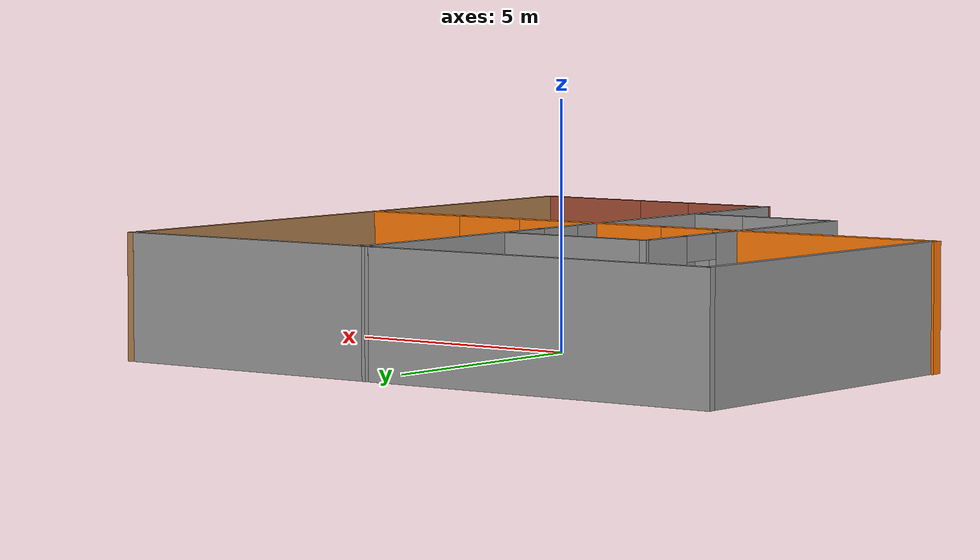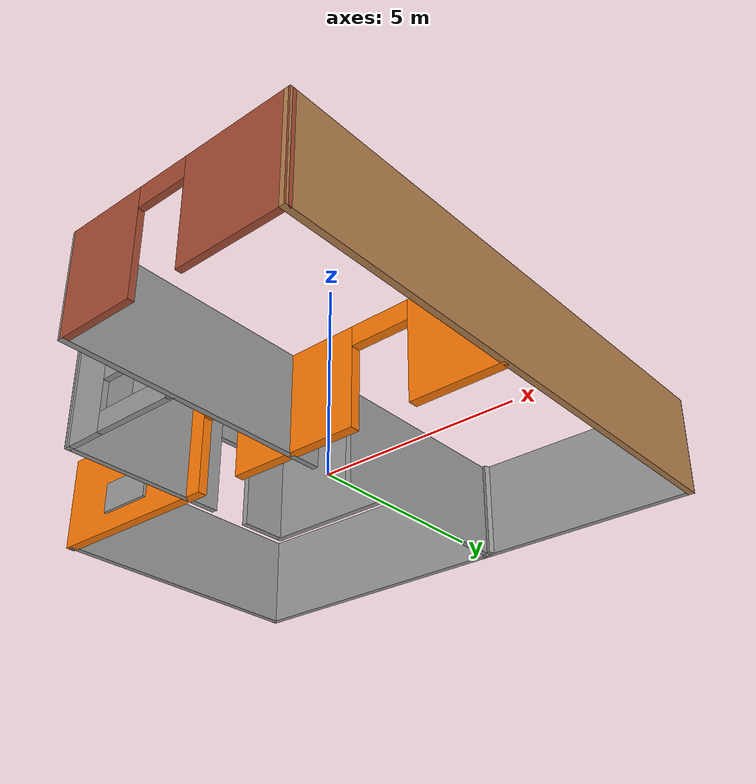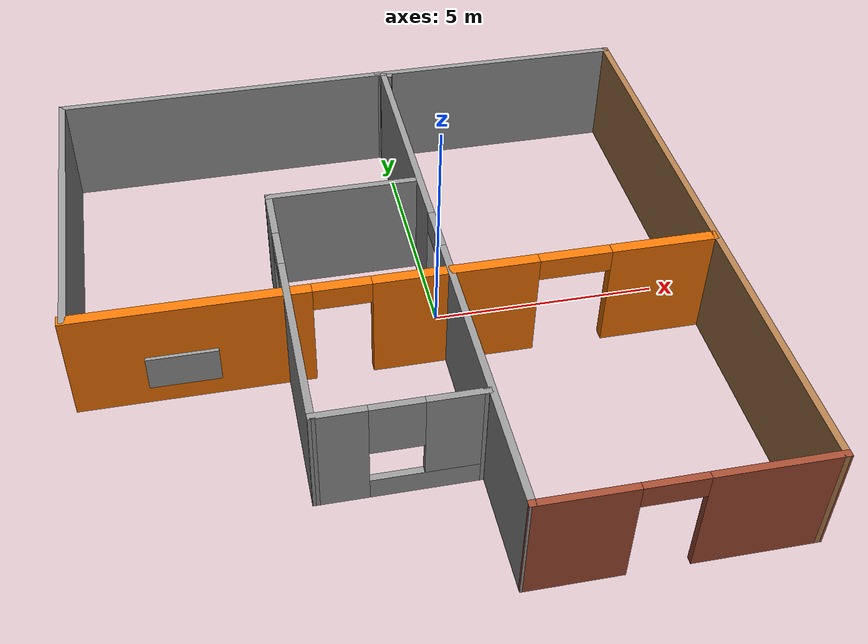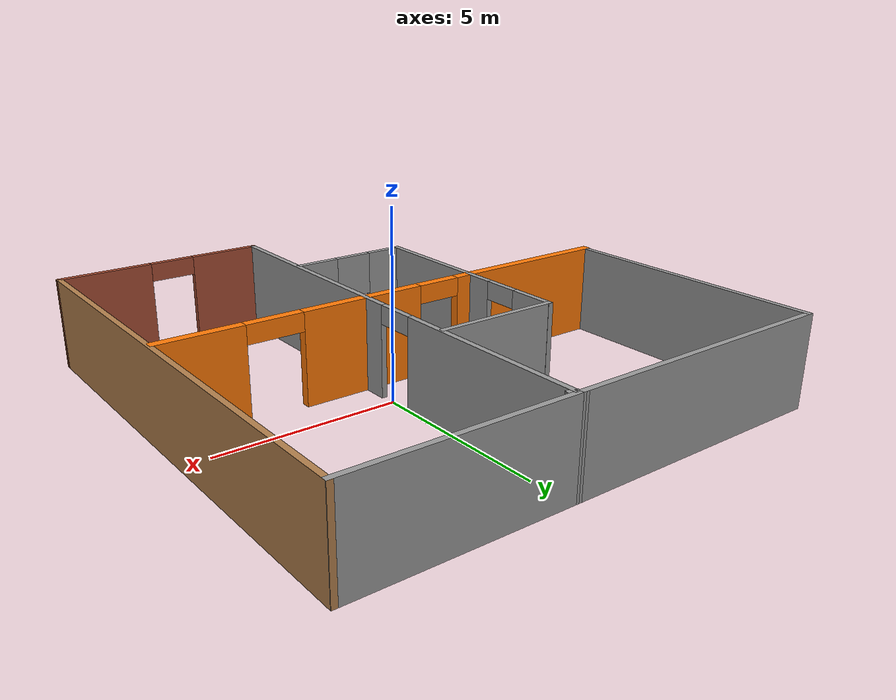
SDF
<?xml version='1.0'?>
<sdf version='1.6'>
  <model name='UfficioBase'>
    <pose frame=''>-1.05793 -0.50638 0 0 -0 0</pose>
    <link name='Wall_0'>
      <collision name='Wall_0_Collision'>
        <geometry>
          <box>
            <size>7.77861 0.15 2.5</size>
          </box>
        </geometry>
        <pose frame=''>0 0 1.25 0 -0 0</pose>
      </collision>
      <visual name='Wall_0_Visual'>
        <pose frame=''>0 0 1.25 0 -0 0</pose>
        <geometry>
          <box>
            <size>7.77861 0.15 2.5</size>
          </box>
        </geometry>
        <material>
          <script>
            <uri>file://media/materials/scripts/gazebo.material</uri>
            <name>Gazebo/Grey</name>
          </script>
          <ambient>1 1 1 1</ambient>
        </material>
      </visual>
      <pose frame=''>-2.90624 6.69915 0 0 -0 0.002248</pose>
    </link>
    <link name='Wall_1'>
      <collision name='Wall_1_Collision'>
        <geometry>
          <box>
            <size>6.00559 0.15 2.5</size>
          </box>
        </geometry>
        <pose frame=''>0 0 1.25 0 -0 0</pose>
      </collision>
      <visual name='Wall_1_Visual'>
        <pose frame=''>0 0 1.25 0 -0 0</pose>
        <geometry>
          <box>
            <size>6.00559 0.15 2.5</size>
          </box>
        </geometry>
        <material>
          <script>
            <uri>file://media/materials/scripts/gazebo.material</uri>
            <name>Gazebo/Grey</name>
          </script>
          <ambient>1 1 1 1</ambient>
        </material>
      </visual>
      <pose frame=''>3.83014 6.70755 0 0 0 -5.9e-05</pose>
    </link>
    <link name='Wall_11'>
      <collision name='Wall_11_Collision'>
        <geometry>
          <box>
            <size>3.4532 0.15 2.5</size>
          </box>
        </geometry>
        <pose frame=''>0 0 1.25 0 -0 0</pose>
      </collision>
      <visual name='Wall_11_Visual'>
        <pose frame=''>0 0 1.25 0 -0 0</pose>
        <geometry>
          <box>
            <size>3.4532 0.15 2.5</size>
          </box>
        </geometry>
        <material>
          <script>
            <uri>file://media/materials/scripts/gazebo.material</uri>
            <name>Gazebo/Grey</name>
          </script>
          <ambient>1 1 1 1</ambient>
        </material>
      </visual>
      <pose frame=''>-0.659815 2.39779 0 0 -0 3.14028</pose>
    </link>
    <link name='Wall_12'>
      <pose frame=''>-2.32127 -0.818911 0 0 0 -1.57386</pose>
      <visual name='Wall_12_Visual_0'>
        <pose frame=''>-2.6363 0 1.25 0 -0 0</pose>
        <geometry>
          <box>
            <size>1.32378 0.15 2.5</size>
          </box>
        </geometry>
        <material>
          <script>
            <uri>file://media/materials/scripts/gazebo.material</uri>
            <name>Gazebo/Grey</name>
          </script>
          <ambient>1 1 1 1</ambient>
        </material>
      </visual>
      <collision name='Wall_12_Collision_0'>
        <geometry>
          <box>
            <size>1.32378 0.15 2.5</size>
          </box>
        </geometry>
        <pose frame=''>-2.6363 0 1.25 0 -0 0</pose>
      </collision>
      <visual name='Wall_12_Visual_1'>
        <pose frame=''>1.1508 0 1.25 0 -0 0</pose>
        <geometry>
          <box>
            <size>4.29479 0.15 2.5</size>
          </box>
        </geometry>
        <material>
          <script>
            <uri>file://media/materials/scripts/gazebo.material</uri>
            <name>Gazebo/Grey</name>
          </script>
          <ambient>1 1 1 1</ambient>
        </material>
      </visual>
      <collision name='Wall_12_Collision_1'>
        <geometry>
          <box>
            <size>4.29479 0.15 2.5</size>
          </box>
        </geometry>
        <pose frame=''>1.1508 0 1.25 0 -0 0</pose>
      </collision>
      <visual name='Wall_12_Visual_2'>
        <pose frame=''>-1.4855 0 2.25 0 -0 0</pose>
        <geometry>
          <box>
            <size>0.977819 0.15 0.5</size>
          </box>
        </geometry>
        <material>
          <script>
            <uri>file://media/materials/scripts/gazebo.material</uri>
            <name>Gazebo/Grey</name>
          </script>
          <ambient>1 1 1 1</ambient>
        </material>
      </visual>
      <collision name='Wall_12_Collision_2'>
        <geometry>
          <box>
            <size>0.977819 0.15 0.5</size>
          </box>
        </geometry>
        <pose frame=''>-1.4855 0 2.25 0 -0 0</pose>
      </collision>
    </link>
    <link name='Wall_13'>
      <pose frame=''>-0.672965 -4.04426 0 0 0 -0.001309</pose>
      <visual name='Wall_13_Visual_0'>
        <pose frame=''>-1.16681 0 1.25 0 -0 0</pose>
        <geometry>
          <box>
            <size>1.11958 0.15 2.5</size>
          </box>
        </geometry>
        <material>
          <script>
            <uri>file://media/materials/scripts/gazebo.material</uri>
            <name>Gazebo/Grey</name>
          </script>
          <ambient>1 1 1 1</ambient>
        </material>
      </visual>
      <collision name='Wall_13_Collision_0'>
        <geometry>
          <box>
            <size>1.11958 0.15 2.5</size>
          </box>
        </geometry>
        <pose frame=''>-1.16681 0 1.25 0 -0 0</pose>
      </collision>
      <visual name='Wall_13_Visual_1'>
        <pose frame=''>0.559788 0 0.25 0 -0 0</pose>
        <geometry>
          <box>
            <size>2.33362 0.15 0.5</size>
          </box>
        </geometry>
        <material>
          <script>
            <uri>file://media/materials/scripts/gazebo.material</uri>
            <name>Gazebo/Grey</name>
          </script>
          <ambient>1 1 1 1</ambient>
        </material>
      </visual>
      <collision name='Wall_13_Collision_1'>
        <geometry>
          <box>
            <size>2.33362 0.15 0.5</size>
          </box>
        </geometry>
        <pose frame=''>0.559788 0 0.25 0 -0 0</pose>
      </collision>
      <visual name='Wall_13_Visual_2'>
        <pose frame=''>1.09843 0 1.5 0 -0 0</pose>
        <geometry>
          <box>
            <size>1.25634 0.15 2</size>
          </box>
        </geometry>
        <material>
          <script>
            <uri>file://media/materials/scripts/gazebo.material</uri>
            <name>Gazebo/Grey</name>
          </script>
          <ambient>1 1 1 1</ambient>
        </material>
      </visual>
      <collision name='Wall_13_Collision_2'>
        <geometry>
          <box>
            <size>1.25634 0.15 2</size>
          </box>
        </geometry>
        <pose frame=''>1.09843 0 1.5 0 -0 0</pose>
      </collision>
      <visual name='Wall_13_Visual_3'>
        <pose frame=''>-0.068381 0 1.9 0 -0 0</pose>
        <geometry>
          <box>
            <size>1.07728 0.15 1.2</size>
          </box>
        </geometry>
        <material>
          <script>
            <uri>file://media/materials/scripts/gazebo.material</uri>
            <name>Gazebo/Grey</name>
          </script>
          <ambient>1 1 1 1</ambient>
        </material>
      </visual>
      <collision name='Wall_13_Collision_3'>
        <geometry>
          <box>
            <size>1.07728 0.15 1.2</size>
          </box>
        </geometry>
        <pose frame=''>-0.068381 0 1.9 0 -0 0</pose>
      </collision>
    </link>
    <link name='Wall_14'>
      <collision name='Wall_14_Collision'>
        <geometry>
          <box>
            <size>0.15 0.15 2.5</size>
          </box>
        </geometry>
        <pose frame=''>0 0 1.25 0 -0 0</pose>
      </collision>
      <visual name='Wall_14_Visual'>
        <pose frame=''>0 0 1.25 0 -0 0</pose>
        <geometry>
          <box>
            <size>0.15 0.15 2.5</size>
          </box>
        </geometry>
        <material>
          <script>
            <uri>file://media/materials/scripts/gazebo.material</uri>
            <name>Gazebo/Grey</name>
          </script>
          <ambient>1 1 1 1</ambient>
        </material>
      </visual>
      <pose frame=''>0.972057 -4.04642 0 0 -0 0</pose>
    </link>
    <link name='Wall_2'>
      <collision name='Wall_2_Collision'>
        <geometry>
          <box>
            <size>13.5653 0.15 2.5</size>
          </box>
        </geometry>
        <pose frame=''>0 0 1.25 0 -0 0</pose>
      </collision>
      <visual name='Wall_2_Visual'>
        <pose frame=''>0 0 1.25 0 -0 0</pose>
        <geometry>
          <box>
            <size>13.5653 0.15 2.5</size>
          </box>
        </geometry>
        <material>
          <script>
            <uri>file://media/materials/scripts/gazebo.material</uri>
            <name>Gazebo/Wood</name>
          </script>
          <ambient>0.996078 0.47451 0.0196078 1</ambient>
        </material>
      </visual>
      <pose frame=''>6.76143 -0.00012 0 0 0 -1.57028</pose>
    </link>
    <link name='Wall_3'>
      <pose frame=''>3.91193 -6.69712 0 0 -0 3.13791</pose>
      <visual name='Wall_3_Visual_0'>
        <pose frame=''>-1.63283 0 1.25 0 -0 0</pose>
        <geometry>
          <box>
            <size>2.59043 0.15 2.5</size>
          </box>
        </geometry>
        <material>
          <script>
            <uri>file://media/materials/scripts/gazebo.material</uri>
            <name>Gazebo/Bricks</name>
          </script>
          <ambient>0.996078 0.47451 0.0196078 1</ambient>
        </material>
      </visual>
      <collision name='Wall_3_Collision_0'>
        <geometry>
          <box>
            <size>2.59043 0.15 2.5</size>
          </box>
        </geometry>
        <pose frame=''>-1.63283 0 1.25 0 -0 0</pose>
      </collision>
      <visual name='Wall_3_Visual_1'>
        <pose frame=''>1.91963 0 1.25 0 -0 0</pose>
        <geometry>
          <box>
            <size>2.01683 0.15 2.5</size>
          </box>
        </geometry>
        <material>
          <script>
            <uri>file://media/materials/scripts/gazebo.material</uri>
            <name>Gazebo/Bricks</name>
          </script>
          <ambient>0.996078 0.47451 0.0196078 1</ambient>
        </material>
      </visual>
      <collision name='Wall_3_Collision_1'>
        <geometry>
          <box>
            <size>2.01683 0.15 2.5</size>
          </box>
        </geometry>
        <pose frame=''>1.91963 0 1.25 0 -0 0</pose>
      </collision>
      <visual name='Wall_3_Visual_2'>
        <pose frame=''>0.286797 0 2.25 0 -0 0</pose>
        <geometry>
          <box>
            <size>1.24883 0.15 0.5</size>
          </box>
        </geometry>
        <material>
          <script>
            <uri>file://media/materials/scripts/gazebo.material</uri>
            <name>Gazebo/Bricks</name>
          </script>
          <ambient>0.996078 0.47451 0.0196078 1</ambient>
        </material>
      </visual>
      <collision name='Wall_3_Collision_2'>
        <geometry>
          <box>
            <size>1.24883 0.15 0.5</size>
          </box>
        </geometry>
        <pose frame=''>0.286797 0 2.25 0 -0 0</pose>
      </collision>
    </link>
    <link name='Wall_4'>
      <pose frame=''>1.04883 -0.028808 0 0 -0 1.57231</pose>
      <visual name='Wall_4_Visual_0'>
        <pose frame=''>-3.30138 0 1.25 0 -0 0</pose>
        <geometry>
          <box>
            <size>6.86261 0.15 2.5</size>
          </box>
        </geometry>
        <material>
          <script>
            <uri>file://media/materials/scripts/gazebo.material</uri>
            <name>Gazebo/Grey</name>
          </script>
          <ambient>1 1 1 1</ambient>
        </material>
      </visual>
      <collision name='Wall_4_Collision_0'>
        <geometry>
          <box>
            <size>6.86261 0.15 2.5</size>
          </box>
        </geometry>
        <pose frame=''>-3.30138 0 1.25 0 -0 0</pose>
      </collision>
      <visual name='Wall_4_Visual_1'>
        <pose frame=''>3.97425 0 1.25 0 -0 0</pose>
        <geometry>
          <box>
            <size>5.51685 0.15 2.5</size>
          </box>
        </geometry>
        <material>
          <script>
            <uri>file://media/materials/scripts/gazebo.material</uri>
            <name>Gazebo/Grey</name>
          </script>
          <ambient>1 1 1 1</ambient>
        </material>
      </visual>
      <collision name='Wall_4_Collision_1'>
        <geometry>
          <box>
            <size>5.51685 0.15 2.5</size>
          </box>
        </geometry>
        <pose frame=''>3.97425 0 1.25 0 -0 0</pose>
      </collision>
      <visual name='Wall_4_Visual_2'>
        <pose frame=''>0.672878 0 2.25 0 -0 0</pose>
        <geometry>
          <box>
            <size>1.0859 0.15 0.5</size>
          </box>
        </geometry>
        <material>
          <script>
            <uri>file://media/materials/scripts/gazebo.material</uri>
            <name>Gazebo/Grey</name>
          </script>
          <ambient>1 1 1 1</ambient>
        </material>
      </visual>
      <collision name='Wall_4_Collision_2'>
        <geometry>
          <box>
            <size>1.0859 0.15 0.5</size>
          </box>
        </geometry>
        <pose frame=''>0.672878 0 2.25 0 -0 0</pose>
      </collision>
    </link>
    <link name='Wall_5'>
      <collision name='Wall_5_Collision'>
        <geometry>
          <box>
            <size>0.15 0.15 2.5</size>
          </box>
        </geometry>
        <pose frame=''>0 0 1.25 0 -0 0</pose>
      </collision>
      <visual name='Wall_5_Visual'>
        <pose frame=''>0 0 1.25 0 -0 0</pose>
        <geometry>
          <box>
            <size>0.15 0.15 2.5</size>
          </box>
        </geometry>
        <material>
          <script>
            <uri>file://media/materials/scripts/gazebo.material</uri>
            <name>Gazebo/Grey</name>
          </script>
          <ambient>1 1 1 1</ambient>
        </material>
      </visual>
      <pose frame=''>1.03873 6.63398 0 0 -0 0</pose>
    </link>
    <link name='Wall_6'>
      <collision name='Wall_6_Collision'>
        <geometry>
          <box>
            <size>0.286845 0.15 2.5</size>
          </box>
        </geometry>
        <pose frame=''>0 0 1.25 0 -0 0</pose>
      </collision>
      <visual name='Wall_6_Visual'>
        <pose frame=''>0 0 1.25 0 -0 0</pose>
        <geometry>
          <box>
            <size>0.286845 0.15 2.5</size>
          </box>
        </geometry>
        <material>
          <script>
            <uri>file://media/materials/scripts/gazebo.material</uri>
            <name>Gazebo/Grey</name>
          </script>
          <ambient>1 1 1 1</ambient>
        </material>
      </visual>
      <pose frame=''>1.1034 6.6116 0 0 0 -0.333109</pose>
    </link>
    <link name='Wall_8'>
      <collision name='Wall_8_Collision'>
        <geometry>
          <box>
            <size>7.5 0.15 2.5</size>
          </box>
        </geometry>
        <pose frame=''>0 0 1.25 0 -0 0</pose>
      </collision>
      <visual name='Wall_8_Visual'>
        <pose frame=''>0 0 1.25 0 -0 0</pose>
        <geometry>
          <box>
            <size>7.5 0.15 2.5</size>
          </box>
        </geometry>
        <material>
          <script>
            <uri>file://media/materials/scripts/gazebo.material</uri>
            <name>Gazebo/Grey</name>
          </script>
          <ambient>1 1 1 1</ambient>
        </material>
      </visual>
      <pose frame=''>-6.71494 3.00962 0 0 0 -1.57083</pose>
    </link>
    <link name='Wall_9'>
      <pose frame=''>-0.034568 -0.67462 0 0 0 -0.001347</pose>
      <visual name='Wall_9_Visual_0'>
        <pose frame=''>-4.29269 0 1.25 0 -0 0</pose>
        <geometry>
          <box>
            <size>5.02563 0.25 2.5</size>
          </box>
        </geometry>
        <material>
          <script>
            <uri>file://media/materials/scripts/gazebo.material</uri>
            <name>Gazebo/Grey</name>
          </script>
          <ambient>0.996078 0.47451 0.0196078 1</ambient>
        </material>
      </visual>
      <collision name='Wall_9_Collision_0'>
        <geometry>
          <box>
            <size>5.02563 0.25 2.5</size>
          </box>
        </geometry>
        <pose frame=''>-4.29269 0 1.25 0 -0 0</pose>
      </collision>
      <visual name='Wall_9_Visual_1'>
        <pose frame=''>1.1939 0 1.25 0 -0 0</pose>
        <geometry>
          <box>
            <size>3.49803 0.25 2.5</size>
          </box>
        </geometry>
        <material>
          <script>
            <uri>file://media/materials/scripts/gazebo.material</uri>
            <name>Gazebo/Grey</name>
          </script>
          <ambient>0.996078 0.47451 0.0196078 1</ambient>
        </material>
      </visual>
      <collision name='Wall_9_Collision_1'>
        <geometry>
          <box>
            <size>3.49803 0.25 2.5</size>
          </box>
        </geometry>
        <pose frame=''>1.1939 0 1.25 0 -0 0</pose>
      </collision>
      <visual name='Wall_9_Visual_2'>
        <pose frame=''>5.64621 0 1.25 0 -0 0</pose>
        <geometry>
          <box>
            <size>2.31859 0.25 2.5</size>
          </box>
        </geometry>
        <material>
          <script>
            <uri>file://media/materials/scripts/gazebo.material</uri>
            <name>Gazebo/Grey</name>
          </script>
          <ambient>0.996078 0.47451 0.0196078 1</ambient>
        </material>
      </visual>
      <collision name='Wall_9_Collision_2'>
        <geometry>
          <box>
            <size>2.31859 0.25 2.5</size>
          </box>
        </geometry>
        <pose frame=''>5.64621 0 1.25 0 -0 0</pose>
      </collision>
      <visual name='Wall_9_Visual_3'>
        <pose frame=''>-1.16749 0 2.25 0 -0 0</pose>
        <geometry>
          <box>
            <size>1.22477 0.25 0.5</size>
          </box>
        </geometry>
        <material>
          <script>
            <uri>file://media/materials/scripts/gazebo.material</uri>
            <name>Gazebo/Grey</name>
          </script>
          <ambient>0.996078 0.47451 0.0196078 1</ambient>
        </material>
      </visual>
      <collision name='Wall_9_Collision_3'>
        <geometry>
          <box>
            <size>1.22477 0.25 0.5</size>
          </box>
        </geometry>
        <pose frame=''>-1.16749 0 2.25 0 -0 0</pose>
      </collision>
      <visual name='Wall_9_Visual_4'>
        <pose frame=''>3.71492 0 2.25 0 -0 0</pose>
        <geometry>
          <box>
            <size>1.544 0.25 0.5</size>
          </box>
        </geometry>
        <material>
          <script>
            <uri>file://media/materials/scripts/gazebo.material</uri>
            <name>Gazebo/Grey</name>
          </script>
          <ambient>0.996078 0.47451 0.0196078 1</ambient>
        </material>
      </visual>
      <collision name='Wall_9_Collision_4'>
        <geometry>
          <box>
            <size>1.544 0.25 0.5</size>
          </box>
        </geometry>
        <pose frame=''>3.71492 0 2.25 0 -0 0</pose>
      </collision>
    </link>
    <link name='Window_0'>
      <collision name='Window_0_Collision'>
        <geometry>
          <box>
            <size>1.5 0.17 0.8</size>
          </box>
        </geometry>
        <pose frame=''>0 0 0.4 0 -0 0</pose>
      </collision>
      <visual name='Window_0_Visual'>
        <pose frame=''>0 0 0.4 0 -0 0</pose>
        <geometry>
          <box>
            <size>1.5 0.17 0.8</size>
          </box>
        </geometry>
        <material>
          <script>
            <uri>file://media/materials/scripts/gazebo.material</uri>
            <name>Gazebo/Grey</name>
          </script>
        </material>
      </visual>
      <pose frame=''>-4.53607 -0.79162 0.5 0 -0 0</pose>
    </link>
    <static>1</static>
  </model>
</sdf>
